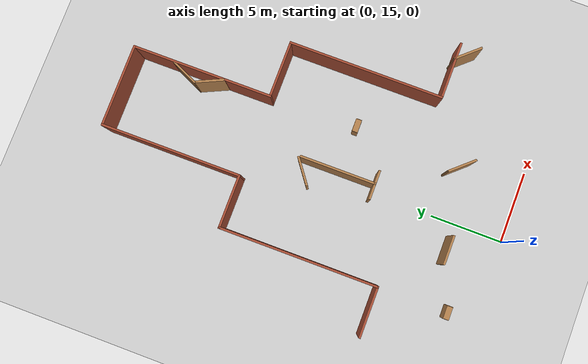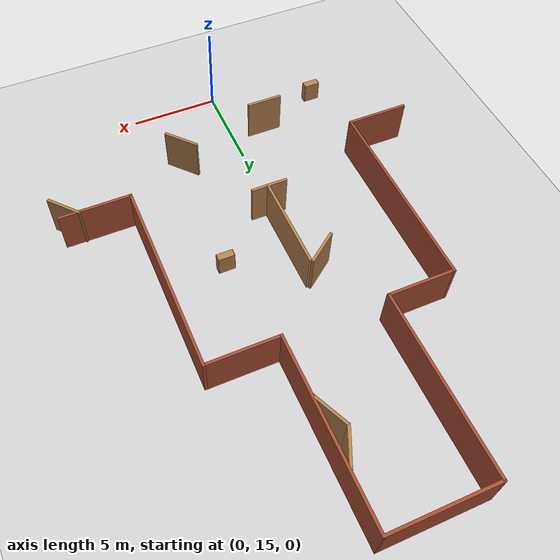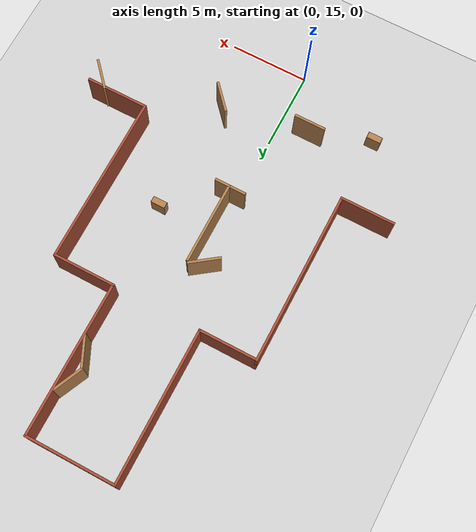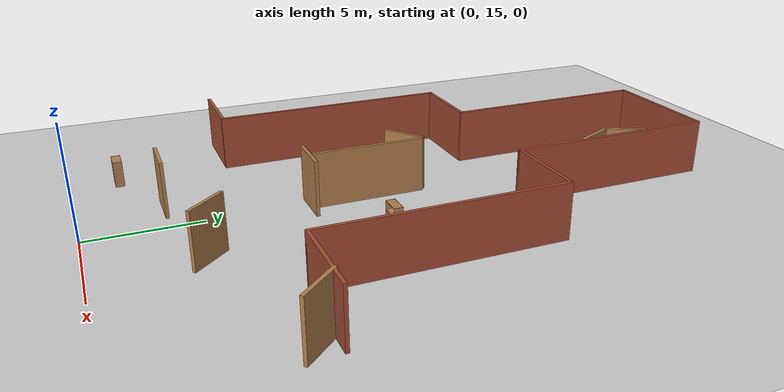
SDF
<sdf version="1.6">
 <world name="default">
  <model name="ground_plane">
   <static>1</static>
   <link name="link">
    <collision name="collision">
     <geometry><plane><normal>0 0 1</normal><size>100 100</size></plane></geometry>
     <surface><friction><ode><mu>100</mu><mu2>50</mu2></ode></friction></surface>
    </collision>
    <visual name="visual">
     <cast_shadows>0</cast_shadows>
     <geometry><plane><normal>0 0 1</normal><size>100 100</size></plane></geometry>
     <material>
      <script><uri>file://media/materials/scripts/gazebo.material</uri><name>Gazebo/Grey</name></script>
     </material>
    </visual>
   </link>
  </model>
  <model name="bookshelf_1">
   <static>1</static>
   <link name="link">
    <inertial><mass>1</mass></inertial>
    <collision name="back">
     <pose>0 0.005 0.6 0 -0 0</pose>
     <geometry><box><size>0.9 0.01 1.2</size></box></geometry>
    </collision>
    <visual name="visual1">
     <pose>0 0.005 0.6 0 -0 0</pose>
     <geometry><box><size>0.9 0.01 1.2</size></box></geometry>
     <material>
      <script><uri>file://media/materials/scripts/gazebo.material</uri><name>Gazebo/Wood</name></script>
     </material>
    </visual>
    <collision name="left_side">
     <pose>0.45 -0.195 0.6 0 -0 0</pose>
     <geometry><box><size>0.02 0.4 1.2</size></box></geometry>
    </collision>
    <visual name="visual2">
     <pose>0.45 -0.195 0.6 0 -0 0</pose>
     <geometry><box><size>0.02 0.4 1.2</size></box></geometry>
     <material>
      <script><uri>file://media/materials/scripts/gazebo.material</uri><name>Gazebo/Wood</name></script>
     </material>
    </visual>
    <collision name="right_side">
     <pose>-0.45 -0.195 0.6 0 -0 0</pose>
     <geometry><box><size>0.02 0.4 1.2</size></box></geometry>
    </collision>
    <visual name="visual3">
     <pose>-0.45 -0.195 0.6 0 -0 0</pose>
     <geometry><box><size>0.02 0.4 1.2</size></box></geometry>
     <material>
      <script><uri>file://media/materials/scripts/gazebo.material</uri><name>Gazebo/Wood</name></script>
     </material>
    </visual>
    <collision name="bottom">
     <pose>0 -0.195 0.03 0 -0 0</pose>
     <geometry><box><size>0.88 0.4 0.06</size></box></geometry>
    </collision>
    <visual name="visual4">
     <pose>0 -0.195 0.03 0 -0 0</pose>
     <geometry><box><size>0.88 0.4 0.06</size></box></geometry>
     <material>
      <script><uri>file://media/materials/scripts/gazebo.material</uri><name>Gazebo/Wood</name></script>
     </material>
    </visual>
    <collision name="top">
     <pose>0 -0.195 1.19 0 -0 0</pose>
     <geometry><box><size>0.88 0.4 0.02</size></box></geometry>
    </collision>
    <visual name="visual5">
     <pose>0 -0.195 1.19 0 -0 0</pose>
     <geometry><box><size>0.88 0.4 0.02</size></box></geometry>
     <material>
      <script><uri>file://media/materials/scripts/gazebo.material</uri><name>Gazebo/Wood</name></script>
     </material>
    </visual>
    <collision name="low_shelf">
     <pose>0 -0.195 0.43 0 -0 0</pose>
     <geometry><box><size>0.88 0.4 0.02</size></box></geometry>
    </collision>
    <visual name="visual6">
     <pose>0 -0.195 0.43 0 -0 0</pose>
     <geometry><box><size>0.88 0.4 0.02</size></box></geometry>
     <material>
      <script><uri>file://media/materials/scripts/gazebo.material</uri><name>Gazebo/Wood</name></script>
     </material>
    </visual>
    <collision name="high_shelf">
     <pose>0 -0.195 0.8 0 -0 0</pose>
     <geometry><box><size>0.88 0.4 0.02</size></box></geometry>
    </collision>
    <visual name="visual7">
     <pose>0 -0.195 0.8 0 -0 0</pose>
     <geometry><box><size>0.88 0.4 0.02</size></box></geometry>
     <material>
      <script><uri>file://media/materials/scripts/gazebo.material</uri><name>Gazebo/Wood</name></script>
     </material>
    </visual>
   </link>
   <pose>-5.70602 17.248 0 0 -0 0</pose>
  </model>
  <model name="bookshelf_2">
   <static>1</static>
   <link name="link">
    <inertial><mass>1</mass></inertial>
    <collision name="back">
     <pose>0 0.005 0.6 0 -0 0</pose>
     <geometry><box><size>0.9 0.01 1.2</size></box></geometry>
    </collision>
    <visual name="visual1">
     <pose>0 0.005 0.6 0 -0 0</pose>
     <geometry><box><size>0.9 0.01 1.2</size></box></geometry>
     <material>
      <script><uri>file://media/materials/scripts/gazebo.material</uri><name>Gazebo/Wood</name></script>
     </material>
    </visual>
    <collision name="left_side">
     <pose>0.45 -0.195 0.6 0 -0 0</pose>
     <geometry><box><size>0.02 0.4 1.2</size></box></geometry>
    </collision>
    <visual name="visual2">
     <pose>0.45 -0.195 0.6 0 -0 0</pose>
     <geometry><box><size>0.02 0.4 1.2</size></box></geometry>
     <material>
      <script><uri>file://media/materials/scripts/gazebo.material</uri><name>Gazebo/Wood</name></script>
     </material>
    </visual>
    <collision name="right_side">
     <pose>-0.45 -0.195 0.6 0 -0 0</pose>
     <geometry><box><size>0.02 0.4 1.2</size></box></geometry>
    </collision>
    <visual name="visual3">
     <pose>-0.45 -0.195 0.6 0 -0 0</pose>
     <geometry><box><size>0.02 0.4 1.2</size></box></geometry>
     <material>
      <script><uri>file://media/materials/scripts/gazebo.material</uri><name>Gazebo/Wood</name></script>
     </material>
    </visual>
    <collision name="bottom">
     <pose>0 -0.195 0.03 0 -0 0</pose>
     <geometry><box><size>0.88 0.4 0.06</size></box></geometry>
    </collision>
    <visual name="visual4">
     <pose>0 -0.195 0.03 0 -0 0</pose>
     <geometry><box><size>0.88 0.4 0.06</size></box></geometry>
     <material>
      <script><uri>file://media/materials/scripts/gazebo.material</uri><name>Gazebo/Wood</name></script>
     </material>
    </visual>
    <collision name="top">
     <pose>0 -0.195 1.19 0 -0 0</pose>
     <geometry><box><size>0.88 0.4 0.02</size></box></geometry>
    </collision>
    <visual name="visual5">
     <pose>0 -0.195 1.19 0 -0 0</pose>
     <geometry><box><size>0.88 0.4 0.02</size></box></geometry>
     <material>
      <script><uri>file://media/materials/scripts/gazebo.material</uri><name>Gazebo/Wood</name></script>
     </material>
    </visual>
    <collision name="low_shelf">
     <pose>0 -0.195 0.43 0 -0 0</pose>
     <geometry><box><size>0.88 0.4 0.02</size></box></geometry>
    </collision>
    <visual name="visual6">
     <pose>0 -0.195 0.43 0 -0 0</pose>
     <geometry><box><size>0.88 0.4 0.02</size></box></geometry>
     <material>
      <script><uri>file://media/materials/scripts/gazebo.material</uri><name>Gazebo/Wood</name></script>
     </material>
    </visual>
    <collision name="high_shelf">
     <pose>0 -0.195 0.8 0 -0 0</pose>
     <geometry><box><size>0.88 0.4 0.02</size></box></geometry>
    </collision>
    <visual name="visual7">
     <pose>0 -0.195 0.8 0 -0 0</pose>
     <geometry><box><size>0.88 0.4 0.02</size></box></geometry>
     <material>
      <script><uri>file://media/materials/scripts/gazebo.material</uri><name>Gazebo/Wood</name></script>
     </material>
    </visual>
   </link>
   <pose>3.89381 27.1031 0 0 -0 0</pose>
  </model>
  <model name="test_maze">
   <link name="Wall_79">
    <pose>-8.36895 21.825 0 0 -0 0</pose>
    <visual name="Wall_79_Visual">
     <pose>0 0 1.25 0 -0 0</pose>
     <geometry><box><size>3.5 0.15 2.5</size></box></geometry>
     <material>
      <script><uri>file://media/materials/scripts/gazebo.material</uri><name>Gazebo/Bricks</name></script>
      <ambient>1 1 1 1</ambient>
      <shader type="pixel"/>
     </material>
     <meta><layer>0</layer></meta>
    </visual>
    <collision name="Wall_79_Collision">
     <pose>0 0 1.25 0 -0 0</pose>
     <geometry><box><size>3.5 0.15 2.5</size></box></geometry>
     <surface>
      <friction>
       <ode><mu>1</mu><mu2>1</mu2><fdir1>0 0 0</fdir1><slip1>0</slip1><slip2>0</slip2></ode>
       <torsional>
        <coefficient>1</coefficient>
        <patch_radius>0</patch_radius>
        <surface_radius>0</surface_radius>
        <use_patch_radius>1</use_patch_radius>
        <ode><slip>0</slip></ode>
       </torsional>
      </friction>
      <bounce><restitution_coefficient>0</restitution_coefficient><threshold>1e+06</threshold></bounce>
      <contact>
       <collide_without_contact>0</collide_without_contact>
       <collide_without_contact_bitmask>1</collide_without_contact_bitmask>
       <collide_bitmask>1</collide_bitmask>
       <ode>
        <soft_cfm>0</soft_cfm>
        <soft_erp>0.2</soft_erp>
        <kp>1e+13</kp>
        <kd>1</kd>
        <max_vel>0.01</max_vel>
        <min_depth>0</min_depth>
       </ode>
       <bullet>
        <split_impulse>1</split_impulse>
        <split_impulse_penetration_threshold>-0.01</split_impulse_penetration_threshold>
        <soft_cfm>0</soft_cfm>
        <soft_erp>0.2</soft_erp>
        <kp>1e+13</kp>
        <kd>1</kd>
       </bullet>
      </contact>
     </surface>
    </collision>
   </link>
   <link name="Wall_80">
    <pose>-6.69395 27.25 0 0 -0 1.5708</pose>
    <visual name="Wall_80_Visual">
     <pose>0 0 1.25 0 -0 0</pose>
     <geometry><box><size>11 0.15 2.5</size></box></geometry>
     <material>
      <script><uri>file://media/materials/scripts/gazebo.material</uri><name>Gazebo/Bricks</name></script>
      <ambient>1 1 1 1</ambient>
      <shader type="pixel"/>
     </material>
     <meta><layer>0</layer></meta>
    </visual>
    <collision name="Wall_80_Collision">
     <pose>0 0 1.25 0 -0 0</pose>
     <geometry><box><size>11 0.15 2.5</size></box></geometry>
     <surface>
      <friction>
       <ode><mu>1</mu><mu2>1</mu2><fdir1>0 0 0</fdir1><slip1>0</slip1><slip2>0</slip2></ode>
       <torsional>
        <coefficient>1</coefficient>
        <patch_radius>0</patch_radius>
        <surface_radius>0</surface_radius>
        <use_patch_radius>1</use_patch_radius>
        <ode><slip>0</slip></ode>
       </torsional>
      </friction>
      <bounce><restitution_coefficient>0</restitution_coefficient><threshold>1e+06</threshold></bounce>
      <contact>
       <collide_without_contact>0</collide_without_contact>
       <collide_without_contact_bitmask>1</collide_without_contact_bitmask>
       <collide_bitmask>1</collide_bitmask>
       <ode>
        <soft_cfm>0</soft_cfm>
        <soft_erp>0.2</soft_erp>
        <kp>1e+13</kp>
        <kd>1</kd>
        <max_vel>0.01</max_vel>
        <min_depth>0</min_depth>
       </ode>
       <bullet>
        <split_impulse>1</split_impulse>
        <split_impulse_penetration_threshold>-0.01</split_impulse_penetration_threshold>
        <soft_cfm>0</soft_cfm>
        <soft_erp>0.2</soft_erp>
        <kp>1e+13</kp>
        <kd>1</kd>
       </bullet>
      </contact>
     </surface>
    </collision>
   </link>
   <link name="Wall_81">
    <pose>-4.89395 32.675 0 0 -0 0</pose>
    <visual name="Wall_81_Visual">
     <pose>0 0 1.25 0 -0 0</pose>
     <geometry><box><size>3.75 0.15 2.5</size></box></geometry>
     <material>
      <script><uri>file://media/materials/scripts/gazebo.material</uri><name>Gazebo/Bricks</name></script>
      <ambient>1 1 1 1</ambient>
      <shader type="pixel"/>
     </material>
     <meta><layer>0</layer></meta>
    </visual>
    <collision name="Wall_81_Collision">
     <pose>0 0 1.25 0 -0 0</pose>
     <geometry><box><size>3.75 0.15 2.5</size></box></geometry>
     <surface>
      <friction>
       <ode><mu>1</mu><mu2>1</mu2><fdir1>0 0 0</fdir1><slip1>0</slip1><slip2>0</slip2></ode>
       <torsional>
        <coefficient>1</coefficient>
        <patch_radius>0</patch_radius>
        <surface_radius>0</surface_radius>
        <use_patch_radius>1</use_patch_radius>
        <ode><slip>0</slip></ode>
       </torsional>
      </friction>
      <bounce><restitution_coefficient>0</restitution_coefficient><threshold>1e+06</threshold></bounce>
      <contact>
       <collide_without_contact>0</collide_without_contact>
       <collide_without_contact_bitmask>1</collide_without_contact_bitmask>
       <collide_bitmask>1</collide_bitmask>
       <ode>
        <soft_cfm>0</soft_cfm>
        <soft_erp>0.2</soft_erp>
        <kp>1e+13</kp>
        <kd>1</kd>
        <max_vel>0.01</max_vel>
        <min_depth>0</min_depth>
       </ode>
       <bullet>
        <split_impulse>1</split_impulse>
        <split_impulse_penetration_threshold>-0.01</split_impulse_penetration_threshold>
        <soft_cfm>0</soft_cfm>
        <soft_erp>0.2</soft_erp>
        <kp>1e+13</kp>
        <kd>1</kd>
       </bullet>
      </contact>
     </surface>
    </collision>
   </link>
   <link name="Wall_82">
    <pose>-3.09395 37.475 0 0 -0 1.5708</pose>
    <visual name="Wall_82_Visual">
     <pose>0 0 1.25 0 -0 0</pose>
     <geometry><box><size>9.75 0.15 2.5</size></box></geometry>
     <material>
      <script><uri>file://media/materials/scripts/gazebo.material</uri><name>Gazebo/Bricks</name></script>
      <ambient>1 1 1 1</ambient>
      <shader type="pixel"/>
     </material>
     <meta><layer>0</layer></meta>
    </visual>
    <collision name="Wall_82_Collision">
     <pose>0 0 1.25 0 -0 0</pose>
     <geometry><box><size>9.75 0.15 2.5</size></box></geometry>
     <surface>
      <friction>
       <ode><mu>1</mu><mu2>1</mu2><fdir1>0 0 0</fdir1><slip1>0</slip1><slip2>0</slip2></ode>
       <torsional>
        <coefficient>1</coefficient>
        <patch_radius>0</patch_radius>
        <surface_radius>0</surface_radius>
        <use_patch_radius>1</use_patch_radius>
        <ode><slip>0</slip></ode>
       </torsional>
      </friction>
      <bounce><restitution_coefficient>0</restitution_coefficient><threshold>1e+06</threshold></bounce>
      <contact>
       <collide_without_contact>0</collide_without_contact>
       <collide_without_contact_bitmask>1</collide_without_contact_bitmask>
       <collide_bitmask>1</collide_bitmask>
       <ode>
        <soft_cfm>0</soft_cfm>
        <soft_erp>0.2</soft_erp>
        <kp>1e+13</kp>
        <kd>1</kd>
        <max_vel>0.01</max_vel>
        <min_depth>0</min_depth>
       </ode>
       <bullet>
        <split_impulse>1</split_impulse>
        <split_impulse_penetration_threshold>-0.01</split_impulse_penetration_threshold>
        <soft_cfm>0</soft_cfm>
        <soft_erp>0.2</soft_erp>
        <kp>1e+13</kp>
        <kd>1</kd>
       </bullet>
      </contact>
     </surface>
    </collision>
   </link>
   <link name="Wall_83">
    <pose>-0.293945 42.275 0 0 -0 0</pose>
    <visual name="Wall_83_Visual">
     <pose>0 0 1.25 0 -0 0</pose>
     <geometry><box><size>5.75 0.15 2.5</size></box></geometry>
     <material>
      <script><uri>file://media/materials/scripts/gazebo.material</uri><name>Gazebo/Bricks</name></script>
      <ambient>1 1 1 1</ambient>
      <shader type="pixel"/>
     </material>
     <meta><layer>0</layer></meta>
    </visual>
    <collision name="Wall_83_Collision">
     <pose>0 0 1.25 0 -0 0</pose>
     <geometry><box><size>5.75 0.15 2.5</size></box></geometry>
     <surface>
      <friction>
       <ode><mu>1</mu><mu2>1</mu2><fdir1>0 0 0</fdir1><slip1>0</slip1><slip2>0</slip2></ode>
       <torsional>
        <coefficient>1</coefficient>
        <patch_radius>0</patch_radius>
        <surface_radius>0</surface_radius>
        <use_patch_radius>1</use_patch_radius>
        <ode><slip>0</slip></ode>
       </torsional>
      </friction>
      <bounce><restitution_coefficient>0</restitution_coefficient><threshold>1e+06</threshold></bounce>
      <contact>
       <collide_without_contact>0</collide_without_contact>
       <collide_without_contact_bitmask>1</collide_without_contact_bitmask>
       <collide_bitmask>1</collide_bitmask>
       <ode>
        <soft_cfm>0</soft_cfm>
        <soft_erp>0.2</soft_erp>
        <kp>1e+13</kp>
        <kd>1</kd>
        <max_vel>0.01</max_vel>
        <min_depth>0</min_depth>
       </ode>
       <bullet>
        <split_impulse>1</split_impulse>
        <split_impulse_penetration_threshold>-0.01</split_impulse_penetration_threshold>
        <soft_cfm>0</soft_cfm>
        <soft_erp>0.2</soft_erp>
        <kp>1e+13</kp>
        <kd>1</kd>
       </bullet>
      </contact>
     </surface>
    </collision>
   </link>
   <link name="Wall_84">
    <pose>2.50605 37.475 0 0 0 -1.5708</pose>
    <visual name="Wall_84_Visual">
     <pose>0 0 1.25 0 -0 0</pose>
     <geometry><box><size>9.75 0.15 2.5</size></box></geometry>
     <material>
      <script><uri>file://media/materials/scripts/gazebo.material</uri><name>Gazebo/Bricks</name></script>
      <ambient>1 1 1 1</ambient>
      <shader type="pixel"/>
     </material>
     <meta><layer>0</layer></meta>
    </visual>
    <collision name="Wall_84_Collision">
     <pose>0 0 1.25 0 -0 0</pose>
     <geometry><box><size>9.75 0.15 2.5</size></box></geometry>
     <surface>
      <friction>
       <ode><mu>1</mu><mu2>1</mu2><fdir1>0 0 0</fdir1><slip1>0</slip1><slip2>0</slip2></ode>
       <torsional>
        <coefficient>1</coefficient>
        <patch_radius>0</patch_radius>
        <surface_radius>0</surface_radius>
        <use_patch_radius>1</use_patch_radius>
        <ode><slip>0</slip></ode>
       </torsional>
      </friction>
      <bounce><restitution_coefficient>0</restitution_coefficient><threshold>1e+06</threshold></bounce>
      <contact>
       <collide_without_contact>0</collide_without_contact>
       <collide_without_contact_bitmask>1</collide_without_contact_bitmask>
       <collide_bitmask>1</collide_bitmask>
       <ode>
        <soft_cfm>0</soft_cfm>
        <soft_erp>0.2</soft_erp>
        <kp>1e+13</kp>
        <kd>1</kd>
        <max_vel>0.01</max_vel>
        <min_depth>0</min_depth>
       </ode>
       <bullet>
        <split_impulse>1</split_impulse>
        <split_impulse_penetration_threshold>-0.01</split_impulse_penetration_threshold>
        <soft_cfm>0</soft_cfm>
        <soft_erp>0.2</soft_erp>
        <kp>1e+13</kp>
        <kd>1</kd>
       </bullet>
      </contact>
     </surface>
    </collision>
   </link>
   <link name="Wall_85">
    <pose>4.43105 32.675 0 0 -0 0</pose>
    <visual name="Wall_85_Visual">
     <pose>0 0 1.25 0 -0 0</pose>
     <geometry><box><size>4 0.15 2.5</size></box></geometry>
     <material>
      <script><uri>file://media/materials/scripts/gazebo.material</uri><name>Gazebo/Bricks</name></script>
      <ambient>1 1 1 1</ambient>
      <shader type="pixel"/>
     </material>
     <meta><layer>0</layer></meta>
    </visual>
    <collision name="Wall_85_Collision">
     <pose>0 0 1.25 0 -0 0</pose>
     <geometry><box><size>4 0.15 2.5</size></box></geometry>
     <surface>
      <friction>
       <ode><mu>1</mu><mu2>1</mu2><fdir1>0 0 0</fdir1><slip1>0</slip1><slip2>0</slip2></ode>
       <torsional>
        <coefficient>1</coefficient>
        <patch_radius>0</patch_radius>
        <surface_radius>0</surface_radius>
        <use_patch_radius>1</use_patch_radius>
        <ode><slip>0</slip></ode>
       </torsional>
      </friction>
      <bounce><restitution_coefficient>0</restitution_coefficient><threshold>1e+06</threshold></bounce>
      <contact>
       <collide_without_contact>0</collide_without_contact>
       <collide_without_contact_bitmask>1</collide_without_contact_bitmask>
       <collide_bitmask>1</collide_bitmask>
       <ode>
        <soft_cfm>0</soft_cfm>
        <soft_erp>0.2</soft_erp>
        <kp>1e+13</kp>
        <kd>1</kd>
        <max_vel>0.01</max_vel>
        <min_depth>0</min_depth>
       </ode>
       <bullet>
        <split_impulse>1</split_impulse>
        <split_impulse_penetration_threshold>-0.01</split_impulse_penetration_threshold>
        <soft_cfm>0</soft_cfm>
        <soft_erp>0.2</soft_erp>
        <kp>1e+13</kp>
        <kd>1</kd>
       </bullet>
      </contact>
     </surface>
    </collision>
   </link>
   <link name="Wall_86">
    <pose>6.35605 27.375 0 0 0 -1.5708</pose>
    <visual name="Wall_86_Visual">
     <pose>0 0 1.25 0 -0 0</pose>
     <geometry><box><size>10.75 0.15 2.5</size></box></geometry>
     <material>
      <script><uri>file://media/materials/scripts/gazebo.material</uri><name>Gazebo/Bricks</name></script>
      <ambient>1 1 1 1</ambient>
      <shader type="pixel"/>
     </material>
     <meta><layer>0</layer></meta>
    </visual>
    <collision name="Wall_86_Collision">
     <pose>0 0 1.25 0 -0 0</pose>
     <geometry><box><size>10.75 0.15 2.5</size></box></geometry>
     <surface>
      <friction>
       <ode><mu>1</mu><mu2>1</mu2><fdir1>0 0 0</fdir1><slip1>0</slip1><slip2>0</slip2></ode>
       <torsional>
        <coefficient>1</coefficient>
        <patch_radius>0</patch_radius>
        <surface_radius>0</surface_radius>
        <use_patch_radius>1</use_patch_radius>
        <ode><slip>0</slip></ode>
       </torsional>
      </friction>
      <bounce><restitution_coefficient>0</restitution_coefficient><threshold>1e+06</threshold></bounce>
      <contact>
       <collide_without_contact>0</collide_without_contact>
       <collide_without_contact_bitmask>1</collide_without_contact_bitmask>
       <collide_bitmask>1</collide_bitmask>
       <ode>
        <soft_cfm>0</soft_cfm>
        <soft_erp>0.2</soft_erp>
        <kp>1e+13</kp>
        <kd>1</kd>
        <max_vel>0.01</max_vel>
        <min_depth>0</min_depth>
       </ode>
       <bullet>
        <split_impulse>1</split_impulse>
        <split_impulse_penetration_threshold>-0.01</split_impulse_penetration_threshold>
        <soft_cfm>0</soft_cfm>
        <soft_erp>0.2</soft_erp>
        <kp>1e+13</kp>
        <kd>1</kd>
       </bullet>
      </contact>
     </surface>
    </collision>
   </link>
   <link name="Wall_87">
    <pose>8.28105 22.075 0 0 -0 0</pose>
    <visual name="Wall_87_Visual">
     <pose>0 0 1.25 0 -0 0</pose>
     <geometry><box><size>4 0.15 2.5</size></box></geometry>
     <material>
      <script><uri>file://media/materials/scripts/gazebo.material</uri><name>Gazebo/Bricks</name></script>
      <ambient>1 1 1 1</ambient>
      <shader type="pixel"/>
     </material>
     <meta><layer>0</layer></meta>
    </visual>
    <collision name="Wall_87_Collision">
     <pose>0 0 1.25 0 -0 0</pose>
     <geometry><box><size>4 0.15 2.5</size></box></geometry>
     <surface>
      <friction>
       <ode><mu>1</mu><mu2>1</mu2><fdir1>0 0 0</fdir1><slip1>0</slip1><slip2>0</slip2></ode>
       <torsional>
        <coefficient>1</coefficient>
        <patch_radius>0</patch_radius>
        <surface_radius>0</surface_radius>
        <use_patch_radius>1</use_patch_radius>
        <ode><slip>0</slip></ode>
       </torsional>
      </friction>
      <bounce><restitution_coefficient>0</restitution_coefficient><threshold>1e+06</threshold></bounce>
      <contact>
       <collide_without_contact>0</collide_without_contact>
       <collide_without_contact_bitmask>1</collide_without_contact_bitmask>
       <collide_bitmask>1</collide_bitmask>
       <ode>
        <soft_cfm>0</soft_cfm>
        <soft_erp>0.2</soft_erp>
        <kp>1e+13</kp>
        <kd>1</kd>
        <max_vel>0.01</max_vel>
        <min_depth>0</min_depth>
       </ode>
       <bullet>
        <split_impulse>1</split_impulse>
        <split_impulse_penetration_threshold>-0.01</split_impulse_penetration_threshold>
        <soft_cfm>0</soft_cfm>
        <soft_erp>0.2</soft_erp>
        <kp>1e+13</kp>
        <kd>1</kd>
       </bullet>
      </contact>
     </surface>
    </collision>
   </link>
   <link name="Wall_93">
    <pose>-0.522049 26.8078 0 0 0 -1.5708</pose>
    <visual name="Wall_93_Visual">
     <pose>0 0 1.25 0 -0 0</pose>
     <geometry><box><size>5.25 0.15 2.5</size></box></geometry>
     <material>
      <script><uri>file://media/materials/scripts/gazebo.material</uri><name>Gazebo/Wood</name></script>
      <ambient>1 1 1 1</ambient>
      <shader type="pixel"/>
     </material>
     <meta><layer>0</layer></meta>
    </visual>
    <collision name="Wall_93_Collision">
     <pose>0 0 1.25 0 -0 0</pose>
     <geometry><box><size>5.25 0.15 2.5</size></box></geometry>
     <surface>
      <friction>
       <ode><mu>1</mu><mu2>1</mu2><fdir1>0 0 0</fdir1><slip1>0</slip1><slip2>0</slip2></ode>
       <torsional>
        <coefficient>1</coefficient>
        <patch_radius>0</patch_radius>
        <surface_radius>0</surface_radius>
        <use_patch_radius>1</use_patch_radius>
        <ode><slip>0</slip></ode>
       </torsional>
      </friction>
      <bounce><restitution_coefficient>0</restitution_coefficient><threshold>1e+06</threshold></bounce>
      <contact>
       <collide_without_contact>0</collide_without_contact>
       <collide_without_contact_bitmask>1</collide_without_contact_bitmask>
       <collide_bitmask>1</collide_bitmask>
       <ode>
        <soft_cfm>0</soft_cfm>
        <soft_erp>0.2</soft_erp>
        <kp>1e+13</kp>
        <kd>1</kd>
        <max_vel>0.01</max_vel>
        <min_depth>0</min_depth>
       </ode>
       <bullet>
        <split_impulse>1</split_impulse>
        <split_impulse_penetration_threshold>-0.01</split_impulse_penetration_threshold>
        <soft_cfm>0</soft_cfm>
        <soft_erp>0.2</soft_erp>
        <kp>1e+13</kp>
        <kd>1</kd>
       </bullet>
      </contact>
     </surface>
    </collision>
   </link>
   <link name="Wall_96_clone_0">
    <pose>-1.38878 28.935 0 0 0 -2.5063</pose>
    <visual name="Wall_96_Visual">
     <pose>0 0 1.25 0 -0 0</pose>
     <geometry><box><size>2.0055 0.15 2.5</size></box></geometry>
     <material>
      <script><uri>file://media/materials/scripts/gazebo.material</uri><name>Gazebo/Wood</name></script>
      <ambient>1 1 1 1</ambient>
      <shader type="pixel"/>
     </material>
     <meta><layer>0</layer></meta>
    </visual>
    <collision name="Wall_96_Collision">
     <pose>0 0 1.25 0 -0 0</pose>
     <geometry><box><size>2.0055 0.15 2.5</size></box></geometry>
     <surface>
      <friction>
       <ode><mu>1</mu><mu2>1</mu2><fdir1>0 0 0</fdir1><slip1>0</slip1><slip2>0</slip2></ode>
       <torsional>
        <coefficient>1</coefficient>
        <patch_radius>0</patch_radius>
        <surface_radius>0</surface_radius>
        <use_patch_radius>1</use_patch_radius>
        <ode><slip>0</slip></ode>
       </torsional>
      </friction>
      <bounce><restitution_coefficient>0</restitution_coefficient><threshold>1e+06</threshold></bounce>
      <contact>
       <collide_without_contact>0</collide_without_contact>
       <collide_without_contact_bitmask>1</collide_without_contact_bitmask>
       <collide_bitmask>1</collide_bitmask>
       <ode>
        <soft_cfm>0</soft_cfm>
        <soft_erp>0.2</soft_erp>
        <kp>1e+13</kp>
        <kd>1</kd>
        <max_vel>0.01</max_vel>
        <min_depth>0</min_depth>
       </ode>
       <bullet>
        <split_impulse>1</split_impulse>
        <split_impulse_penetration_threshold>-0.01</split_impulse_penetration_threshold>
        <soft_cfm>0</soft_cfm>
        <soft_erp>0.2</soft_erp>
        <kp>1e+13</kp>
        <kd>1</kd>
       </bullet>
      </contact>
     </surface>
    </collision>
   </link>
   <link name="Wall_96_clone_0_clone_clone">
    <pose>2.04008 38.5288 0 0 0 -2</pose>
    <inertial>
     <mass>1</mass>
     <inertia><ixx>1</ixx><ixy>0</ixy><ixz>0</ixz><iyy>1</iyy><iyz>0</iyz><izz>1</izz></inertia>
    </inertial>
    <visual name="Wall_96_Visual">
     <pose>0 0 1.25 0 -0 0</pose>
     <geometry><box><size>2.0055 0.15 2.5</size></box></geometry>
     <material>
      <script><uri>file://media/materials/scripts/gazebo.material</uri><name>Gazebo/Wood</name></script>
      <ambient>1 1 1 1</ambient>
      <shader type="pixel"><normal_map>__default__</normal_map></shader>
      <diffuse>1 1 1 1</diffuse>
      <specular>0.2 0.2 0.2 1</specular>
      <emissive>0 0 0 1</emissive>
     </material>
     <meta><layer>0</layer></meta>
    </visual>
    <collision name="Wall_96_Collision">
     <pose>0 0 1.25 0 -0 0</pose>
     <geometry><box><size>2.0055 0.15 2.5</size></box></geometry>
     <surface>
      <friction>
       <ode><mu>1</mu><mu2>1</mu2><fdir1>0 0 0</fdir1><slip1>0</slip1><slip2>0</slip2></ode>
       <torsional>
        <coefficient>1</coefficient>
        <patch_radius>0</patch_radius>
        <surface_radius>0</surface_radius>
        <use_patch_radius>1</use_patch_radius>
        <ode><slip>0</slip></ode>
       </torsional>
      </friction>
      <bounce><restitution_coefficient>0</restitution_coefficient><threshold>1e+06</threshold></bounce>
      <contact>
       <collide_without_contact>0</collide_without_contact>
       <collide_without_contact_bitmask>1</collide_without_contact_bitmask>
       <collide_bitmask>1</collide_bitmask>
       <ode>
        <soft_cfm>0</soft_cfm>
        <soft_erp>0.2</soft_erp>
        <kp>1e+13</kp>
        <kd>1</kd>
        <max_vel>0.01</max_vel>
        <min_depth>0</min_depth>
       </ode>
       <bullet>
        <split_impulse>1</split_impulse>
        <split_impulse_penetration_threshold>-0.01</split_impulse_penetration_threshold>
        <soft_cfm>0</soft_cfm>
        <soft_erp>0.2</soft_erp>
        <kp>1e+13</kp>
        <kd>1</kd>
       </bullet>
      </contact>
     </surface>
    </collision>
   </link>
   <link name="Wall_96_clone_0_clone_clone_clone_clone">
    <pose>2.0778 36.7626 0 0 -0 2</pose>
    <inertial>
     <mass>1</mass>
     <inertia><ixx>1</ixx><ixy>0</ixy><ixz>0</ixz><iyy>1</iyy><iyz>0</iyz><izz>1</izz></inertia>
    </inertial>
    <visual name="Wall_96_Visual">
     <pose>0 0 1.25 0 -0 0</pose>
     <geometry><box><size>2.0055 0.15 2.5</size></box></geometry>
     <material>
      <script><uri>file://media/materials/scripts/gazebo.material</uri><name>Gazebo/Wood</name></script>
      <ambient>1 1 1 1</ambient>
      <shader type="pixel"><normal_map>__default__</normal_map></shader>
      <diffuse>1 1 1 1</diffuse>
      <specular>0.2 0.2 0.2 1</specular>
      <emissive>0 0 0 1</emissive>
     </material>
     <meta><layer>0</layer></meta>
    </visual>
    <collision name="Wall_96_Collision">
     <pose>0 0 1.25 0 -0 0</pose>
     <geometry><box><size>2.0055 0.15 2.5</size></box></geometry>
     <surface>
      <friction>
       <ode><mu>1</mu><mu2>1</mu2><fdir1>0 0 0</fdir1><slip1>0</slip1><slip2>0</slip2></ode>
       <torsional>
        <coefficient>1</coefficient>
        <patch_radius>0</patch_radius>
        <surface_radius>0</surface_radius>
        <use_patch_radius>1</use_patch_radius>
        <ode><slip>0</slip></ode>
       </torsional>
      </friction>
      <bounce><restitution_coefficient>0</restitution_coefficient><threshold>1e+06</threshold></bounce>
      <contact>
       <collide_without_contact>0</collide_without_contact>
       <collide_without_contact_bitmask>1</collide_without_contact_bitmask>
       <collide_bitmask>1</collide_bitmask>
       <ode>
        <soft_cfm>0</soft_cfm>
        <soft_erp>0.2</soft_erp>
        <kp>1e+13</kp>
        <kd>1</kd>
        <max_vel>0.01</max_vel>
        <min_depth>0</min_depth>
       </ode>
       <bullet>
        <split_impulse>1</split_impulse>
        <split_impulse_penetration_threshold>-0.01</split_impulse_penetration_threshold>
        <soft_cfm>0</soft_cfm>
        <soft_erp>0.2</soft_erp>
        <kp>1e+13</kp>
        <kd>1</kd>
       </bullet>
      </contact>
     </surface>
    </collision>
   </link>
   <link name="Wall_96_clone_1_clone_0">
    <pose>2.56865 19.3194 0 0 -0 2.3</pose>
    <inertial>
     <mass>1</mass>
     <inertia><ixx>1</ixx><ixy>0</ixy><ixz>0</ixz><iyy>1</iyy><iyz>0</iyz><izz>1</izz></inertia>
    </inertial>
    <visual name="Wall_96_Visual">
     <pose>0 0 1.25 0 -0 0</pose>
     <geometry><box><size>2.0055 0.15 2.5</size></box></geometry>
     <material>
      <script><uri>file://media/materials/scripts/gazebo.material</uri><name>Gazebo/Wood</name></script>
      <ambient>1 1 1 1</ambient>
      <shader type="pixel"><normal_map>__default__</normal_map></shader>
      <diffuse>1 1 1 1</diffuse>
      <specular>0.2 0.2 0.2 1</specular>
      <emissive>0 0 0 1</emissive>
     </material>
     <meta><layer>0</layer></meta>
    </visual>
    <collision name="Wall_96_Collision">
     <pose>0 0 1.25 0 -0 0</pose>
     <geometry><box><size>2.0055 0.15 2.5</size></box></geometry>
     <surface>
      <friction>
       <ode><mu>1</mu><mu2>1</mu2><fdir1>0 0 0</fdir1><slip1>0</slip1><slip2>0</slip2></ode>
       <torsional>
        <coefficient>1</coefficient>
        <patch_radius>0</patch_radius>
        <surface_radius>0</surface_radius>
        <use_patch_radius>1</use_patch_radius>
        <ode><slip>0</slip></ode>
       </torsional>
      </friction>
      <bounce><restitution_coefficient>0</restitution_coefficient><threshold>1e+06</threshold></bounce>
      <contact>
       <collide_without_contact>0</collide_without_contact>
       <collide_without_contact_bitmask>1</collide_without_contact_bitmask>
       <collide_bitmask>1</collide_bitmask>
       <ode>
        <soft_cfm>0</soft_cfm>
        <soft_erp>0.2</soft_erp>
        <kp>1e+13</kp>
        <kd>1</kd>
        <max_vel>0.01</max_vel>
        <min_depth>0</min_depth>
       </ode>
       <bullet>
        <split_impulse>1</split_impulse>
        <split_impulse_penetration_threshold>-0.01</split_impulse_penetration_threshold>
        <soft_cfm>0</soft_cfm>
        <soft_erp>0.2</soft_erp>
        <kp>1e+13</kp>
        <kd>1</kd>
       </bullet>
      </contact>
     </surface>
    </collision>
   </link>
   <link name="Wall_96_clone_1_clone_0_clone">
    <pose>9.77068 21.4273 0 0 -0 2.3</pose>
    <inertial>
     <mass>1</mass>
     <inertia><ixx>1</ixx><ixy>0</ixy><ixz>0</ixz><iyy>1</iyy><iyz>0</iyz><izz>1</izz></inertia>
    </inertial>
    <visual name="Wall_96_Visual">
     <pose>0 0 1.25 0 -0 0</pose>
     <geometry><box><size>2.0055 0.15 2.5</size></box></geometry>
     <material>
      <script><uri>file://media/materials/scripts/gazebo.material</uri><name>Gazebo/Wood</name></script>
      <ambient>1 1 1 1</ambient>
      <shader type="pixel"><normal_map>__default__</normal_map></shader>
      <diffuse>1 1 1 1</diffuse>
      <specular>0.2 0.2 0.2 1</specular>
      <emissive>0 0 0 1</emissive>
     </material>
     <meta><layer>0</layer></meta>
    </visual>
    <collision name="Wall_96_Collision">
     <pose>0 0 1.25 0 -0 0</pose>
     <geometry><box><size>2.0055 0.15 2.5</size></box></geometry>
     <surface>
      <friction>
       <ode><mu>1</mu><mu2>1</mu2><fdir1>0 0 0</fdir1><slip1>0</slip1><slip2>0</slip2></ode>
       <torsional>
        <coefficient>1</coefficient>
        <patch_radius>0</patch_radius>
        <surface_radius>0</surface_radius>
        <use_patch_radius>1</use_patch_radius>
        <ode><slip>0</slip></ode>
       </torsional>
      </friction>
      <bounce><restitution_coefficient>0</restitution_coefficient><threshold>1e+06</threshold></bounce>
      <contact>
       <collide_without_contact>0</collide_without_contact>
       <collide_without_contact_bitmask>1</collide_without_contact_bitmask>
       <collide_bitmask>1</collide_bitmask>
       <ode>
        <soft_cfm>0</soft_cfm>
        <soft_erp>0.2</soft_erp>
        <kp>1e+13</kp>
        <kd>1</kd>
        <max_vel>0.01</max_vel>
        <min_depth>0</min_depth>
       </ode>
       <bullet>
        <split_impulse>1</split_impulse>
        <split_impulse_penetration_threshold>-0.01</split_impulse_penetration_threshold>
        <soft_cfm>0</soft_cfm>
        <soft_erp>0.2</soft_erp>
        <kp>1e+13</kp>
        <kd>1</kd>
       </bullet>
      </contact>
     </surface>
    </collision>
   </link>
   <link name="Wall_96_clone_1_clone_clone_0_clone_clone_clone_2">
    <pose>-2.89829 18.3391 0 0 -0 0</pose>
    <inertial>
     <mass>1</mass>
     <inertia><ixx>1</ixx><ixy>0</ixy><ixz>0</ixz><iyy>1</iyy><iyz>0</iyz><izz>1</izz></inertia>
    </inertial>
    <visual name="Wall_96_Visual">
     <pose>0 0 1.25 0 -0 0</pose>
     <geometry><box><size>2.0055 0.15 2.5</size></box></geometry>
     <material>
      <script><uri>file://media/materials/scripts/gazebo.material</uri><name>Gazebo/Wood</name></script>
      <ambient>1 1 1 1</ambient>
      <shader type="pixel"><normal_map>__default__</normal_map></shader>
      <diffuse>1 1 1 1</diffuse>
      <specular>0.2 0.2 0.2 1</specular>
      <emissive>0 0 0 1</emissive>
     </material>
     <meta><layer>0</layer></meta>
    </visual>
    <collision name="Wall_96_Collision">
     <pose>0 0 1.25 0 -0 0</pose>
     <geometry><box><size>2.0055 0.15 2.5</size></box></geometry>
     <surface>
      <friction>
       <ode><mu>1</mu><mu2>1</mu2><fdir1>0 0 0</fdir1><slip1>0</slip1><slip2>0</slip2></ode>
       <torsional>
        <coefficient>1</coefficient>
        <patch_radius>0</patch_radius>
        <surface_radius>0</surface_radius>
        <use_patch_radius>1</use_patch_radius>
        <ode><slip>0</slip></ode>
       </torsional>
      </friction>
      <bounce><restitution_coefficient>0</restitution_coefficient><threshold>1e+06</threshold></bounce>
      <contact>
       <collide_without_contact>0</collide_without_contact>
       <collide_without_contact_bitmask>1</collide_without_contact_bitmask>
       <collide_bitmask>1</collide_bitmask>
       <ode>
        <soft_cfm>0</soft_cfm>
        <soft_erp>0.2</soft_erp>
        <kp>1e+13</kp>
        <kd>1</kd>
        <max_vel>0.01</max_vel>
        <min_depth>0</min_depth>
       </ode>
       <bullet>
        <split_impulse>1</split_impulse>
        <split_impulse_penetration_threshold>-0.01</split_impulse_penetration_threshold>
        <soft_cfm>0</soft_cfm>
        <soft_erp>0.2</soft_erp>
        <kp>1e+13</kp>
        <kd>1</kd>
       </bullet>
      </contact>
     </surface>
    </collision>
   </link>
   <link name="Wall_96_clone_1_clone_clone_0_clone_clone_clone_3">
    <pose>-0.603814 24.2406 0 0 -0 0</pose>
    <inertial>
     <mass>1</mass>
     <inertia><ixx>1</ixx><ixy>0</ixy><ixz>0</ixz><iyy>1</iyy><iyz>0</iyz><izz>1</izz></inertia>
    </inertial>
    <visual name="Wall_96_Visual">
     <pose>0 0 1.25 0 -0 0</pose>
     <geometry><box><size>2.0055 0.15 2.5</size></box></geometry>
     <material>
      <script><uri>file://media/materials/scripts/gazebo.material</uri><name>Gazebo/Wood</name></script>
      <ambient>1 1 1 1</ambient>
      <shader type="pixel"><normal_map>__default__</normal_map></shader>
      <diffuse>1 1 1 1</diffuse>
      <specular>0.2 0.2 0.2 1</specular>
      <emissive>0 0 0 1</emissive>
     </material>
     <meta><layer>0</layer></meta>
    </visual>
    <collision name="Wall_96_Collision">
     <pose>0 0 1.25 0 -0 0</pose>
     <geometry><box><size>2.0055 0.15 2.5</size></box></geometry>
     <surface>
      <friction>
       <ode><mu>1</mu><mu2>1</mu2><fdir1>0 0 0</fdir1><slip1>0</slip1><slip2>0</slip2></ode>
       <torsional>
        <coefficient>1</coefficient>
        <patch_radius>0</patch_radius>
        <surface_radius>0</surface_radius>
        <use_patch_radius>1</use_patch_radius>
        <ode><slip>0</slip></ode>
       </torsional>
      </friction>
      <bounce><restitution_coefficient>0</restitution_coefficient><threshold>1e+06</threshold></bounce>
      <contact>
       <collide_without_contact>0</collide_without_contact>
       <collide_without_contact_bitmask>1</collide_without_contact_bitmask>
       <collide_bitmask>1</collide_bitmask>
       <ode>
        <soft_cfm>0</soft_cfm>
        <soft_erp>0.2</soft_erp>
        <kp>1e+13</kp>
        <kd>1</kd>
        <max_vel>0.01</max_vel>
        <min_depth>0</min_depth>
       </ode>
       <bullet>
        <split_impulse>1</split_impulse>
        <split_impulse_penetration_threshold>-0.01</split_impulse_penetration_threshold>
        <soft_cfm>0</soft_cfm>
        <soft_erp>0.2</soft_erp>
        <kp>1e+13</kp>
        <kd>1</kd>
       </bullet>
      </contact>
     </surface>
    </collision>
   </link>
   <static>1</static>
   <pose>0.982774 0.2292 0 0 -0 0</pose>
  </model>
 </world>
</sdf>
